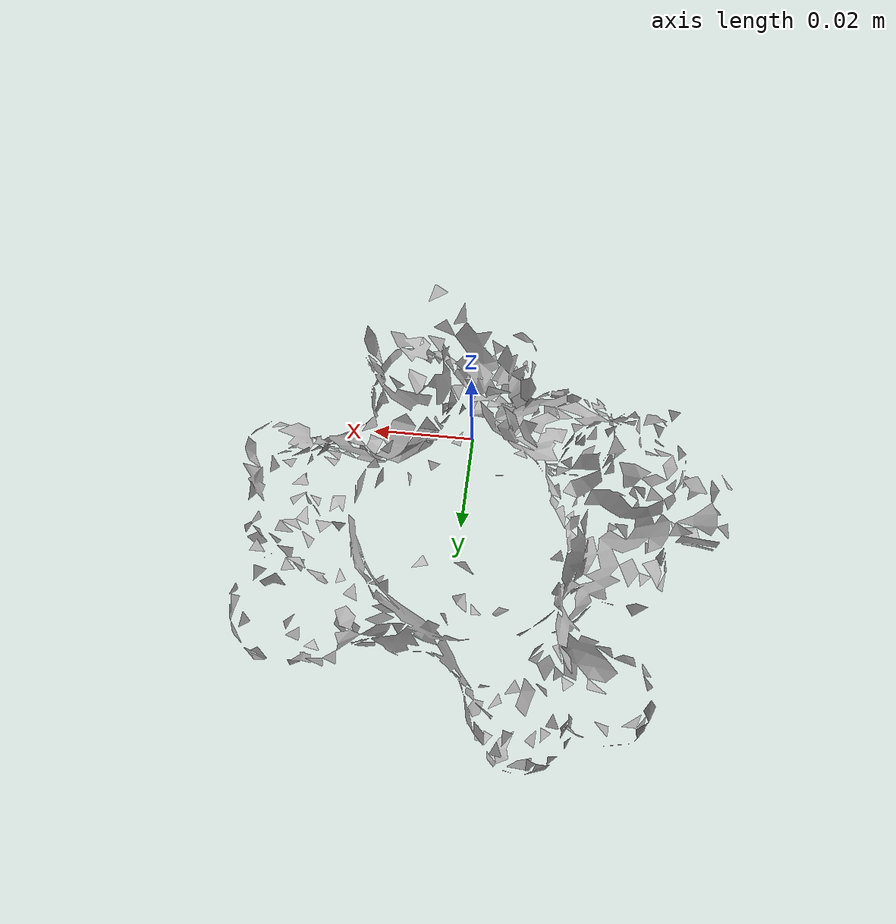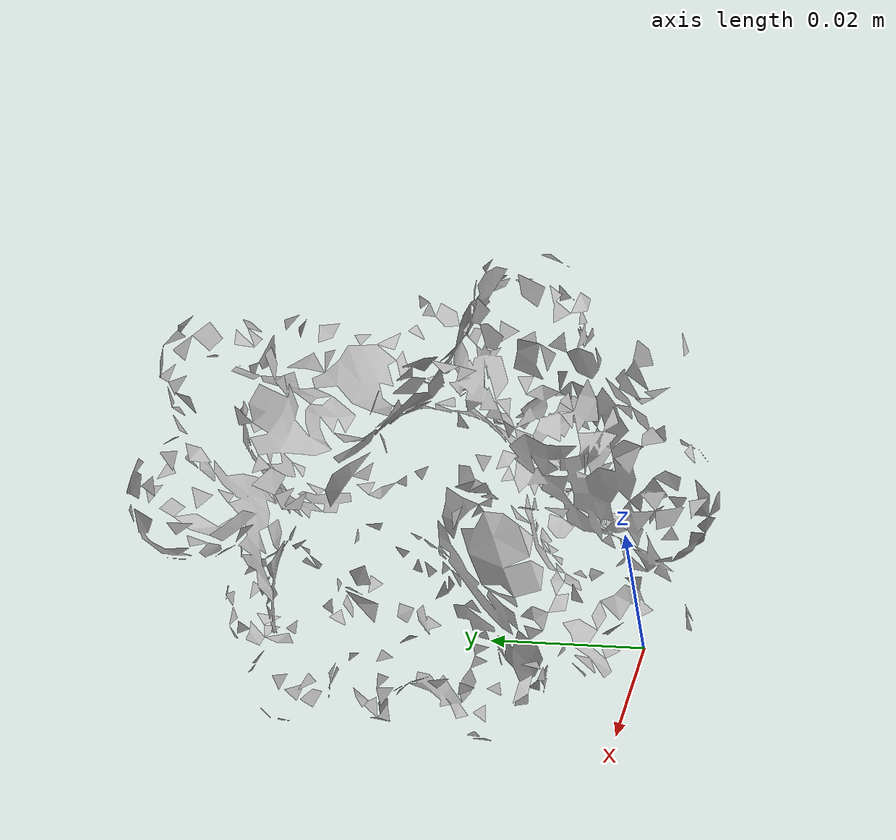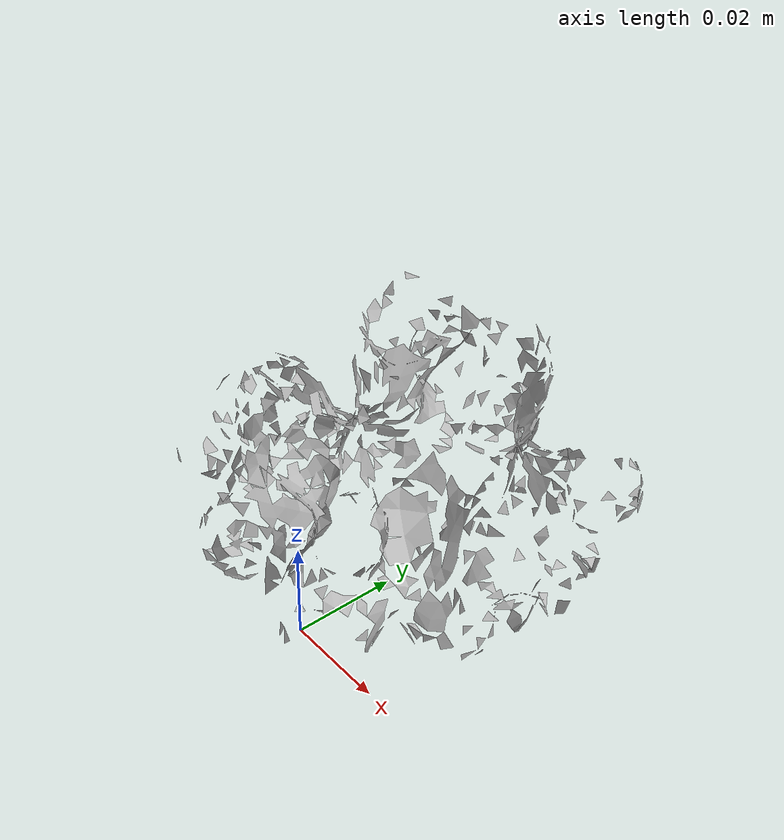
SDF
<?xml version="1.0" ?>
<sdf version="1.4">
  <model name='ycb_063-a_marbles'>
    <link name='body'>
      <inertial>
        <mass>0.147014220949</mass>
        <pose>-0.00275002120953 0.0291653336368 0.0221539240772 0 0 0</pose>
        <inertia>
          <ixx>6.38004707251e-05</ixx>
          <ixy>-6.81762784831e-07</ixy>
          <ixz>-1.20609896884e-06</ixz>
          <iyy>6.58418109571e-05</iyy>
          <iyz>-5.30422053744e-06</iyz>
          <izz>7.69249171026e-05</izz>
        </inertia>
      </inertial>
      <visual name='ycb_063-a_marbles_visual'>
        <pose>0 0 0 0 0 0</pose>
        <geometry>
          <mesh>
            <uri>model://ycb_063-a_marbles/meshes/textured.dae</uri>
          </mesh>
        </geometry>
      </visual>
      <collision name='ycb_063-a_marbles_collision'>
        <pose>0 0 0 0 0 0</pose>
        <geometry>
          <mesh>
            <uri>model://ycb_063-a_marbles/meshes/nontextured.stl</uri>
          </mesh>
        </geometry>
        <max_contacts>10</max_contacts>
      </collision>
    </link>
  </model>
</sdf>
